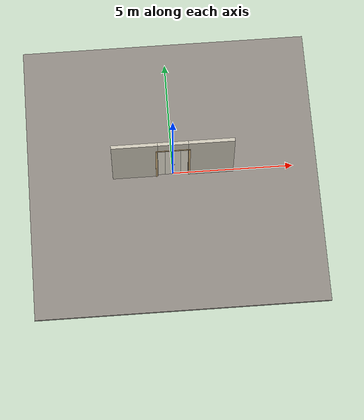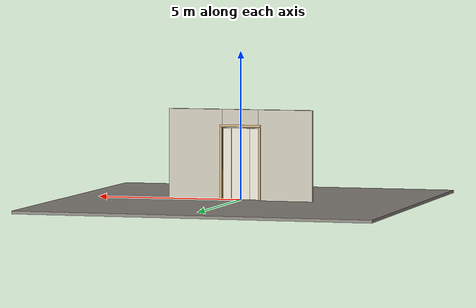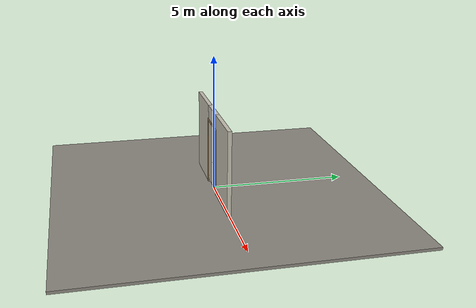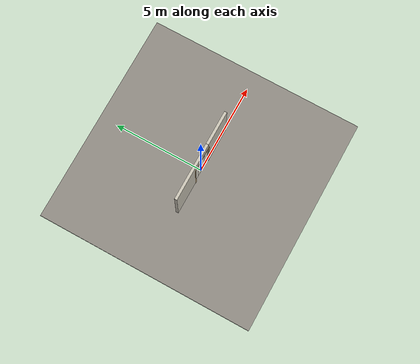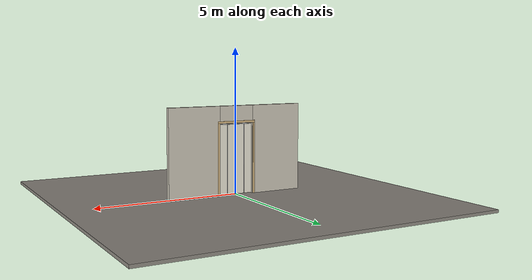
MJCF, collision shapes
<?xml version="1.0" ?>
<mujoco model="db0933_bifold_full">
  <compiler angle="radian" meshdir="../../hardware" texturedir="../../textures" autolimits="true" inertiafromgeom="false"/>
  <option timestep="0.002" integrator="implicitfast" cone="elliptic" impratio="10" noslip_iterations="3">
    <flag multiccd="enable"/>
  </option>
  <size memory="16M"/>
  <default>
    <geom condim="4" solref="0.005 1" solimp="0.95 0.99 0.001"/>
    <joint solreflimit="0.005 1" solimplimit="0.95 0.99 0.001"/>
    <tendon solreflimit="0.005 1"/>
    <equality solref="0.002 1"/>
  </default>
  <visual>
    <headlight ambient="0.4 0.4 0.4" diffuse="0.7 0.7 0.7" specular="0.2 0.2 0.2"/>
    <quality shadowsize="4096"/>
    <map znear="0.01" zfar="60"/>
  </visual>
  <asset>
    <mesh name="knob_13f7a2a65f" file="knob_13f7a2a65f.obj"/>
    <material name="mat_floor" rgba="0.55 0.53 0.5 1" specular="0.2" shininess="0.15" reflectance="0"/>
    <material name="mat_wall" rgba="0.78 0.76 0.7 1" specular="0.2" shininess="0.1" reflectance="0"/>
    <material name="mat_frame" rgba="0.82 0.7 0.5 1" specular="0.2" shininess="0.45" reflectance="0"/>
    <material name="mat_track" rgba="0.8 0.81 0.83 1" specular="0.8" shininess="0.6" reflectance="0.4"/>
    <material name="mat_hinge" rgba="0.65 0.66 0.68 1" specular="0.74" shininess="0.5" reflectance="0.36"/>
    <material name="mat_panel_0_0" rgba="0.9 0.88 0.82 1" specular="0.2" shininess="0.43" reflectance="0"/>
    <material name="mat_panel_0_0_panel" rgba="0.828 0.81 0.754 1" specular="0.2" shininess="0.43" reflectance="0"/>
    <material name="mat_panel_0_1" rgba="0.9 0.88 0.82 1" specular="0.2" shininess="0.43" reflectance="0"/>
    <material name="mat_panel_0_1_panel" rgba="0.828 0.81 0.754 1" specular="0.2" shininess="0.43" reflectance="0"/>
    <material name="mat_op_nickel_satin" rgba="0.72 0.7 0.66 1" specular="0.8" shininess="0.65" reflectance="0.4"/>
    <material name="mat_panel_1_0" rgba="0.9 0.88 0.82 1" specular="0.2" shininess="0.43" reflectance="0"/>
    <material name="mat_panel_1_0_panel" rgba="0.828 0.81 0.754 1" specular="0.2" shininess="0.43" reflectance="0"/>
    <material name="mat_panel_1_1" rgba="0.9 0.88 0.82 1" specular="0.2" shininess="0.43" reflectance="0"/>
    <material name="mat_panel_1_1_panel" rgba="0.828 0.81 0.754 1" specular="0.2" shininess="0.43" reflectance="0"/>
    <texture name="skybox" type="skybox" builtin="gradient" rgb1="0.6 0.7 0.85" rgb2="0.9 0.92 0.95" width="256" height="256"/>
  </asset>
  <worldbody>
    <light name="sun" pos="1.5 -2.5 4" dir="-0.3 0.5 -0.8" directional="true" diffuse="0.8 0.8 0.8" specular="0.3 0.3 0.3" castshadow="true"/>
    <light name="fill" pos="-1.5 2.5 3" dir="0.3 -0.5 -0.7" directional="true" diffuse="0.35 0.35 0.4" castshadow="false"/>
    <camera name="robot_view" pos="0 -2.926563 2.046937" xyaxes="1 0 0 0 0.26963 0.962964" fovy="52"/>
    <camera name="far_view" pos="0 2.926563 2.046937" xyaxes="-1 0 0 0 -0.26963 0.962964" fovy="52"/>
    <camera name="iso" pos="2.224187 -2.458313 2.515188" xyaxes="0.741536 0.670913 0 -0.242917 0.268487 0.932151" fovy="46"/>
    <camera name="detail_handle" pos="0.125 -0.8475 1.28" xyaxes="0.97561 0.219512 0 -0.070934 0.315262 0.94635" fovy="38"/>
    <geom name="floor" type="box" size="6 6 0.05" pos="0 0 -0.05" material="mat_floor" group="0" contype="1" conaffinity="1" friction="0.8 0.005 0.0001" density="2400"/>
    <geom name="wall_left" type="box" size="0.93825 0.0725 1.5275" pos="-1.56175 0 1.5275" material="mat_wall" group="0" contype="1" conaffinity="1" friction="0.6 0.005 0.0001" density="800"/>
    <geom name="wall_right" type="box" size="0.93825 0.0725 1.5275" pos="1.56175 0 1.5275" material="mat_wall" group="0" contype="1" conaffinity="1" friction="0.6 0.005 0.0001" density="800"/>
    <geom name="wall_header" type="box" size="0.6235 0.0725 0.3" pos="0 0 2.755" material="mat_wall" group="0" contype="1" conaffinity="1" friction="0.6 0.005 0.0001" density="800"/>
    <geom name="jamb_hinge" type="box" size="0.0095 0.0725 1.2275" pos="-0.633 0 1.2275" material="mat_frame" group="0" contype="1" conaffinity="1" friction="0.6 0.005 0.0001" density="400"/>
    <geom name="jamb_strike" type="box" size="0.0095 0.0725 1.2275" pos="0.633 0 1.2275" material="mat_frame" group="0" contype="1" conaffinity="1" friction="0.6 0.005 0.0001" density="400"/>
    <geom name="stud_strike" type="box" size="0.015 0.0725 1.2275" pos="0.6575 0 1.2275" material="mat_wall" group="0" contype="1" conaffinity="1" friction="0.6 0.005 0.0001" density="500"/>
    <geom name="jamb_head" type="box" size="0.6575 0.0725 0.0095" pos="0.015 0 2.4645" material="mat_frame" group="0" contype="1" conaffinity="1" friction="0.6 0.005 0.0001" density="400"/>
    <geom name="head_stud" type="box" size="0.6575 0.0725 0.015" pos="0.015 0 2.489" material="mat_wall" group="0" contype="1" conaffinity="1" friction="0.6 0.005 0.0001" density="500"/>
    <geom name="casing_l_n" type="box" size="0.035 0.008 1.237" pos="-0.6725 -0.0805 1.2275" material="mat_frame" group="2" contype="0" conaffinity="0" density="400"/>
    <geom name="casing_r_n" type="box" size="0.035 0.008 1.237" pos="0.6725 -0.0805 1.2275" material="mat_frame" group="2" contype="0" conaffinity="0" density="400"/>
    <geom name="casing_h_n" type="box" size="0.7075 0.008 0.035" pos="0 -0.0805 2.504" material="mat_frame" group="2" contype="0" conaffinity="0" density="400"/>
    <geom name="casing_l_p" type="box" size="0.035 0.008 1.237" pos="-0.6725 0.0805 1.2275" material="mat_frame" group="2" contype="0" conaffinity="0" density="400"/>
    <geom name="casing_r_p" type="box" size="0.035 0.008 1.237" pos="0.6725 0.0805 1.2275" material="mat_frame" group="2" contype="0" conaffinity="0" density="400"/>
    <geom name="casing_h_p" type="box" size="0.7075 0.008 0.035" pos="0 0.0805 2.504" material="mat_frame" group="2" contype="0" conaffinity="0" density="400"/>
    <geom name="fold_track" type="box" size="0.6235 0.02 0.015" pos="0 0 2.44" material="mat_track" group="1" contype="0" conaffinity="0" density="2700"/>
    <site name="approach_point" pos="0 -1.5 0" quat="1 0 0 0" size="0.05" rgba="0.2 0.9 0.2 0.5" group="4"/>
    <site name="goal_point" pos="0 1.5 0" quat="1 0 0 0" size="0.05" rgba="0.2 0.9 0.2 0.5" group="4"/>
    <site name="door_plane_center" pos="0 0 1.2275" quat="1 0 0 0" size="0.02" rgba="0.2 0.9 0.2 0.5" group="4"/>
    <body name="panel_0_0" pos="-0.6235 0 0">
      <inertial pos="0.155099 0 1.227501" mass="5.172552" quat="0.499529 0.499529 -0.50047 0.50047" diaginertia="0.038084478 2.514133091 2.551167071"/>
      <joint name="panel_0_0_hinge" type="hinge" axis="0 0 -1" pos="0.035 0 0" limited="true" range="0 1.48353" damping="0.708336" frictionloss="2.012341" armature="0.02"/>
      <geom name="panel_0_0_slab" type="box" size="0.147145 0.0175 1.2" pos="0.155855 0 1.22" material="mat_panel_0_0" group="0" contype="1" conaffinity="1" friction="0.35 0.005 0.0001" density="1"/>
      <geom name="panel_0_0_pivot_pin" type="cylinder" size="0.008 0.0105" pos="0.035 0 2.4205" material="mat_hinge" group="1" contype="0" conaffinity="0" density="7850"/>
      <body name="panel_0_1" pos="0.305 0 0">
        <inertial pos="0.031507 0.01139 1.196225" mass="5.51603" quat="0.453609 0.548478 0.446215 -0.542497" diaginertia="0.040703534 2.349572144 2.389937401"/>
        <joint name="panel_0_1_hinge" type="hinge" axis="0 0 -1" pos="0 0.0175 0" limited="true" range="-3.141593 0" damping="0.2" frictionloss="0.1" armature="0.005"/>
        <geom name="panel_0_1_slab" type="box" size="0.15575 0.0175 1.2" pos="0.15775 0 1.22" material="mat_panel_0_1" group="0" contype="1" conaffinity="1" friction="0.35 0.005 0.0001" density="1"/>
        <geom name="panel_0_1_knuckle" type="cylinder" size="0.0045 1.19" pos="0 0.0175 1.22" material="mat_hinge" group="1" contype="0" conaffinity="0" density="7850"/>
        <geom name="panel_0_1_knob" type="mesh" mesh="knob_13f7a2a65f" pos="0.2635 -0.0175 1" quat="0.707107 0.707107 0 0" material="mat_op_nickel_satin" group="1" contype="0" conaffinity="0" density="3000"/>
        <geom name="panel_0_1_knob_col" type="sphere" size="0.016" pos="0.2635 -0.0475 1" material="mat_op_nickel_satin" group="0" contype="1" conaffinity="1" friction="0.6 0.005 0.0001" density="3000"/>
        <geom name="panel_0_1_knob_rose" type="cylinder" size="0.022 0.005" pos="0.2635 -0.0225 1" quat="0.707107 -0.707107 0 0" material="mat_op_nickel_satin" group="1" contype="0" conaffinity="0" density="3000"/>
        <site name="panel_0_1_grip" pos="0.2635 -0.0475 1" quat="1 0 0 0" size="0.012" rgba="0.2 0.9 0.2 0.5" group="4"/>
      </body>
    </body>
    <body name="panel_1_0" pos="0.6235 0 0">
      <inertial pos="-0.155099 0 1.227501" mass="5.172552" quat="0.499529 -0.499529 0.50047 0.50047" diaginertia="0.038084478 2.514133091 2.551167071"/>
      <joint name="panel_1_0_hinge" type="hinge" axis="0 0 1" pos="-0.035 0 0" limited="true" range="0 1.48353" damping="0.708336" frictionloss="2.012341" armature="0.02"/>
      <geom name="panel_1_0_slab" type="box" size="0.147145 0.0175 1.2" pos="-0.155855 0 1.22" material="mat_panel_1_0" group="0" contype="1" conaffinity="1" friction="0.35 0.005 0.0001" density="1"/>
      <geom name="panel_1_0_pivot_pin" type="cylinder" size="0.008 0.0105" pos="-0.035 0 2.4205" material="mat_hinge" group="1" contype="0" conaffinity="0" density="7850"/>
      <body name="panel_1_1" pos="-0.305 0 0">
        <inertial pos="-0.031507 0.01139 1.196225" mass="5.51603" quat="0.453609 0.548478 -0.446215 0.542497" diaginertia="0.040703534 2.349572144 2.389937401"/>
        <joint name="panel_1_1_hinge" type="hinge" axis="0 0 1" pos="0 0.0175 0" limited="true" range="-3.141593 0" damping="0.2" frictionloss="0.1" armature="0.005"/>
        <geom name="panel_1_1_slab" type="box" size="0.15575 0.0175 1.2" pos="-0.15775 0 1.22" material="mat_panel_1_1" group="0" contype="1" conaffinity="1" friction="0.35 0.005 0.0001" density="1"/>
        <geom name="panel_1_1_knuckle" type="cylinder" size="0.0045 1.19" pos="0 0.0175 1.22" material="mat_hinge" group="1" contype="0" conaffinity="0" density="7850"/>
        <geom name="panel_1_1_knob" type="mesh" mesh="knob_13f7a2a65f" pos="-0.2635 -0.0175 1" quat="0 0 -0.707107 0.707107" material="mat_op_nickel_satin" group="1" contype="0" conaffinity="0" density="3000"/>
        <geom name="panel_1_1_knob_col" type="sphere" size="0.016" pos="-0.2635 -0.0475 1" material="mat_op_nickel_satin" group="0" contype="1" conaffinity="1" friction="0.6 0.005 0.0001" density="3000"/>
        <geom name="panel_1_1_knob_rose" type="cylinder" size="0.022 0.005" pos="-0.2635 -0.0225 1" quat="0.707107 -0.707107 0 0" material="mat_op_nickel_satin" group="1" contype="0" conaffinity="0" density="3000"/>
        <site name="panel_1_1_grip" pos="-0.2635 -0.0475 1" quat="1 0 0 0" size="0.012" rgba="0.2 0.9 0.2 0.5" group="4"/>
      </body>
    </body>
  </worldbody>
  <equality>
    <joint name="panel_0_1_couple" joint1="panel_0_1_hinge" joint2="panel_0_0_hinge" polycoef="0 -2 0 0 0" active="true"/>
    <joint name="panel_1_1_couple" joint1="panel_1_1_hinge" joint2="panel_1_0_hinge" polycoef="0 -2 0 0 0" active="true"/>
  </equality>
  <sensor>
    <jointpos name="panel_0_0_hinge_pos" joint="panel_0_0_hinge"/>
    <jointvel name="panel_0_0_hinge_vel" joint="panel_0_0_hinge"/>
    <jointpos name="panel_0_1_hinge_pos" joint="panel_0_1_hinge"/>
    <jointvel name="panel_0_1_hinge_vel" joint="panel_0_1_hinge"/>
    <jointpos name="panel_1_0_hinge_pos" joint="panel_1_0_hinge"/>
    <jointvel name="panel_1_0_hinge_vel" joint="panel_1_0_hinge"/>
    <jointpos name="panel_1_1_hinge_pos" joint="panel_1_1_hinge"/>
    <jointvel name="panel_1_1_hinge_vel" joint="panel_1_1_hinge"/>
  </sensor>
</mujoco>
